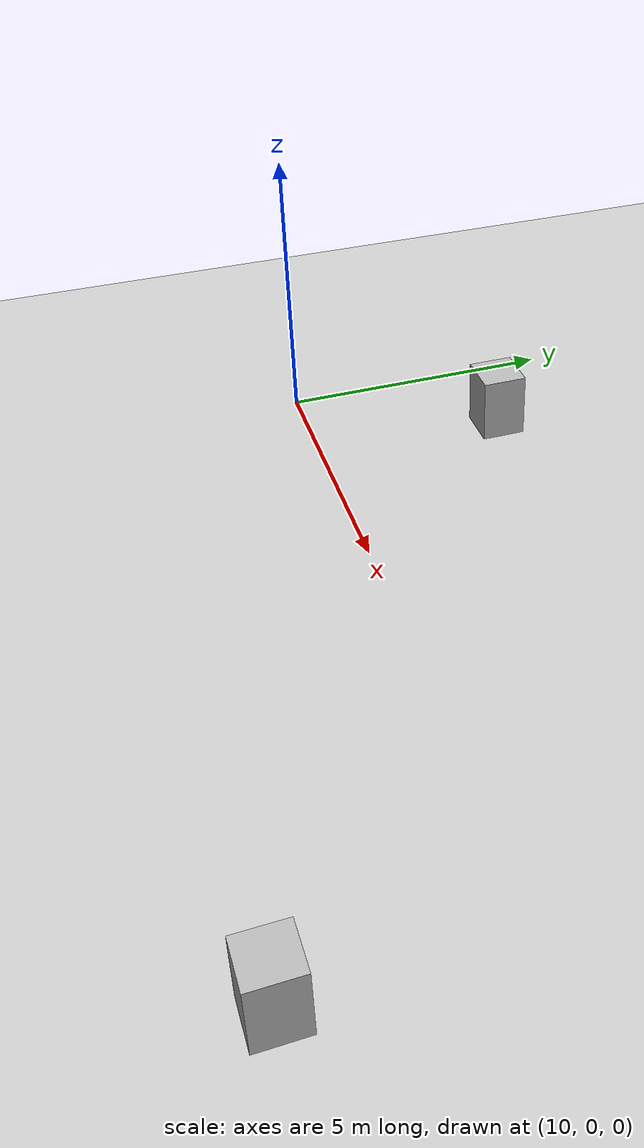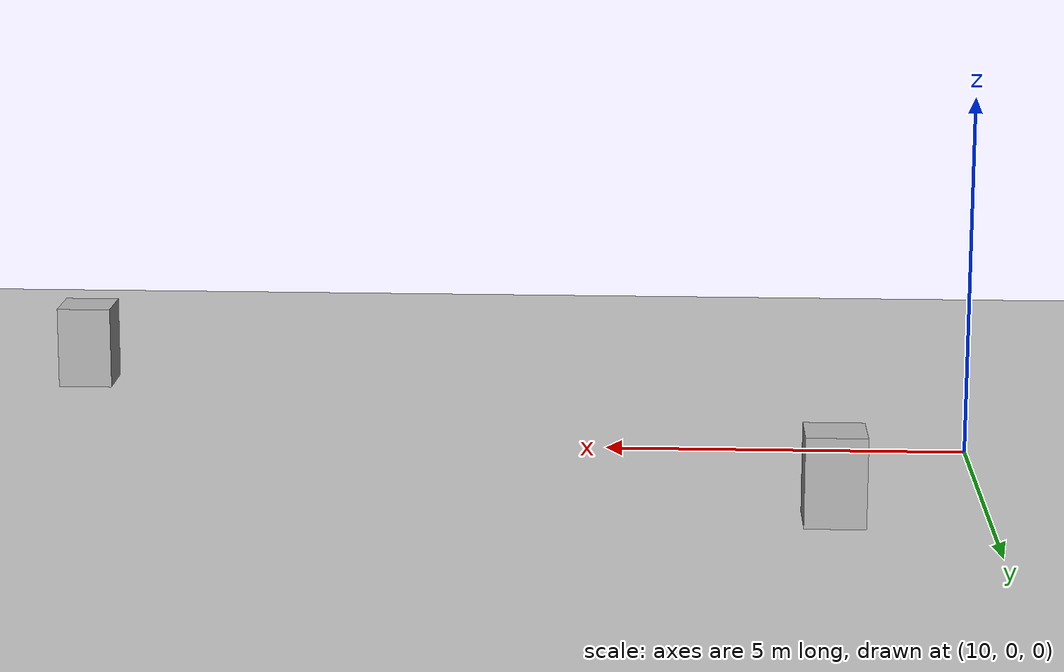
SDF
<?xml version="1.0"?>
<sdf version="1.6">
  <world name="v2-04g-r2-cruise-s4953">
    <gravity>0 0 -9.81</gravity>
    <physics name="v2_deterministic" type="ode">
      <max_step_size>0.002</max_step_size>
      <real_time_update_rate>500</real_time_update_rate>
    </physics>
    <include>
      <uri>model://sun</uri>
    </include>
    <include>
      <uri>model://ground_plane</uri>
    </include>
    <model name="cruise-left">
      <static>true</static>
      <pose>12.011923468 3.447216659 0.600000000 0 0 0.001024356</pose>
      <link name="link">
        <collision name="collision">
          <geometry>
            <box>
              <size>0.800000 0.800000 1.200000</size>
            </box>
          </geometry>
        </collision>
        <visual name="visual">
          <geometry>
            <box>
              <size>0.800000 0.800000 1.200000</size>
            </box>
          </geometry>
        </visual>
      </link>
    </model>
    <model name="cruise-right">
      <static>true</static>
      <pose>22.964242255 -3.533558378 0.600000000 0 0 0.005678273</pose>
      <link name="link">
        <collision name="collision">
          <geometry>
            <box>
              <size>0.800000 0.800000 1.200000</size>
            </box>
          </geometry>
        </collision>
        <visual name="visual">
          <geometry>
            <box>
              <size>0.800000 0.800000 1.200000</size>
            </box>
          </geometry>
        </visual>
      </link>
    </model>
  </world>
</sdf>
